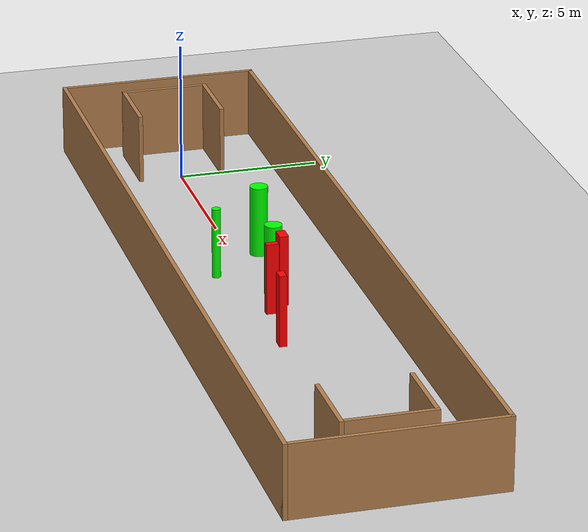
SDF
<sdf version="1.7">
 <world name="default">
  <light name="sun" type="directional">
   <pose>0 0 10 0 -0 0</pose>
   <diffuse>0.8 0.8 0.8 1</diffuse>
   <specular>0.2 0.2 0.2 1</specular>
   <attenuation>
    <range>1000</range>
    <constant>0.9</constant>
    <linear>0.01</linear>
    <quadratic>0.001</quadratic>
   </attenuation>
   <direction>-0.5 0.1 -0.9</direction>
   <spot><inner_angle>0</inner_angle><outer_angle>0</outer_angle><falloff>0</falloff></spot>
  </light>
  <model name="ground_plane">
   <static>1</static>
   <link name="link">
    <collision name="collision">
     <geometry><plane><normal>0 0 1</normal><size>100 100</size></plane></geometry>
     <surface>
      <contact><collide_bitmask>65535</collide_bitmask></contact>
      <friction><ode><mu>100</mu><mu2>50</mu2></ode></friction>
     </surface>
    </collision>
    <visual name="visual">
     <cast_shadows>0</cast_shadows>
     <geometry><plane><normal>0 0 1</normal><size>100 100</size></plane></geometry>
     <material>
      <script><uri>file://media/materials/scripts/gazebo.material</uri><name>Gazebo/Grey</name></script>
     </material>
    </visual>
   </link>
  </model>
  <gravity>0 0 -9.8</gravity>
  <magnetic_field>6e-06 2.3e-05 -4.2e-05</magnetic_field>
  <atmosphere type="adiabatic"/>
  <physics type="ode">
   <max_step_size>0.001</max_step_size>
   <real_time_factor>1</real_time_factor>
   <real_time_update_rate>1000</real_time_update_rate>
  </physics>
  <scene><ambient>0.4 0.4 0.4 1</ambient><background>0.7 0.7 0.7 1</background><shadows>1</shadows></scene>
  <spherical_coordinates>
   <surface_model>EARTH_WGS84</surface_model>
   <latitude_deg>0</latitude_deg>
   <longitude_deg>0</longitude_deg>
   <elevation>0</elevation>
   <heading_deg>0</heading_deg>
  </spherical_coordinates>
  <model name="my_base_walls">
   <link name="Wall_0">
    <collision name="Wall_0_Collision">
     <geometry><box><size>7.15 0.15 2.5</size></box></geometry>
     <pose>0 0 1.25 0 -0 0</pose>
    </collision>
    <visual name="Wall_0_Visual">
     <pose>0 0 1.25 0 -0 0</pose>
     <geometry><box><size>7.15 0.15 2.5</size></box></geometry>
     <material>
      <script><uri>file://media/materials/scripts/gazebo.material</uri><name>Gazebo/Wood</name></script>
      <ambient>1 1 1 1</ambient>
     </material>
     <meta><layer>0</layer></meta>
    </visual>
    <pose>-15 0 0 0 -0 1.5708</pose>
   </link>
   <link name="Wall_10">
    <collision name="Wall_10_Collision">
     <geometry><box><size>2.65 0.15 2.5</size></box></geometry>
     <pose>0 0 1.25 0 -0 0</pose>
    </collision>
    <visual name="Wall_10_Visual">
     <pose>0 0 1.25 0 -0 0</pose>
     <geometry><box><size>2.65 0.15 2.5</size></box></geometry>
     <material>
      <script><uri>file://media/materials/scripts/gazebo.material</uri><name>Gazebo/Wood</name></script>
      <ambient>1 1 1 1</ambient>
     </material>
     <meta><layer>0</layer></meta>
    </visual>
    <pose>-12.75 -1.5 0 0 -0 0</pose>
   </link>
   <link name="Wall_12">
    <collision name="Wall_12_Collision">
     <geometry><box><size>2.65 0.15 2.5</size></box></geometry>
     <pose>0 0 1.25 0 -0 0</pose>
    </collision>
    <visual name="Wall_12_Visual">
     <pose>0 0 1.25 0 -0 0</pose>
     <geometry><box><size>2.65 0.15 2.5</size></box></geometry>
     <material>
      <script><uri>file://media/materials/scripts/gazebo.material</uri><name>Gazebo/Wood</name></script>
      <ambient>1 1 1 1</ambient>
     </material>
     <meta><layer>0</layer></meta>
    </visual>
    <pose>-12.75 1.5 0 0 -0 0</pose>
   </link>
   <link name="Wall_14">
    <collision name="Wall_14_Collision">
     <geometry><box><size>3.15 0.15 2.5</size></box></geometry>
     <pose>0 0 1.25 0 -0 0</pose>
    </collision>
    <visual name="Wall_14_Visual">
     <pose>0 0 1.25 0 -0 0</pose>
     <geometry><box><size>3.15 0.15 2.5</size></box></geometry>
     <material>
      <script><uri>file://media/materials/scripts/gazebo.material</uri><name>Gazebo/Wood</name></script>
      <ambient>1 1 1 1</ambient>
     </material>
     <meta><layer>0</layer></meta>
    </visual>
    <pose>14 0 0 0 -0 -1.5708</pose>
   </link>
   <link name="Wall_15">
    <collision name="Wall_15_Collision">
     <geometry><box><size>2.65 0.15 2.5</size></box></geometry>
     <pose>0 0 1.25 0 -0 0</pose>
    </collision>
    <visual name="Wall_15_Visual">
     <pose>0 0 1.25 0 -0 0</pose>
     <geometry><box><size>2.65 0.15 2.5</size></box></geometry>
     <material>
      <script><uri>file://media/materials/scripts/gazebo.material</uri><name>Gazebo/Wood</name></script>
      <ambient>1 1 1 1</ambient>
     </material>
     <meta><layer>0</layer></meta>
    </visual>
    <pose>12.75 -1.5 0 0 -0 3.14159</pose>
   </link>
   <link name="Wall_17">
    <collision name="Wall_17_Collision">
     <geometry><box><size>2.65 0.15 2.5</size></box></geometry>
     <pose>0 0 1.25 0 -0 0</pose>
    </collision>
    <visual name="Wall_17_Visual">
     <pose>0 0 1.25 0 -0 0</pose>
     <geometry><box><size>2.65 0.15 2.5</size></box></geometry>
     <material>
      <script><uri>file://media/materials/scripts/gazebo.material</uri><name>Gazebo/Wood</name></script>
      <ambient>1 1 1 1</ambient>
     </material>
     <meta><layer>0</layer></meta>
    </visual>
    <pose>12.75 1.5 0 0 -0 3.14159</pose>
   </link>
   <link name="Wall_2">
    <collision name="Wall_2_Collision">
     <geometry><box><size>30.15 0.15 2.5</size></box></geometry>
     <pose>0 0 1.25 0 -0 0</pose>
    </collision>
    <visual name="Wall_2_Visual">
     <pose>0 0 1.25 0 -0 0</pose>
     <geometry><box><size>30.15 0.15 2.5</size></box></geometry>
     <material>
      <script><uri>file://media/materials/scripts/gazebo.material</uri><name>Gazebo/Wood</name></script>
      <ambient>1 1 1 1</ambient>
     </material>
     <meta><layer>0</layer></meta>
    </visual>
    <pose>-0 -3.5 0 0 -0 0</pose>
   </link>
   <link name="Wall_4">
    <collision name="Wall_4_Collision">
     <geometry><box><size>30.15 0.15 2.5</size></box></geometry>
     <pose>0 0 1.25 0 -0 0</pose>
    </collision>
    <visual name="Wall_4_Visual">
     <pose>0 0 1.25 0 -0 0</pose>
     <geometry><box><size>30.15 0.15 2.5</size></box></geometry>
     <material>
      <script><uri>file://media/materials/scripts/gazebo.material</uri><name>Gazebo/Wood</name></script>
      <ambient>1 1 1 1</ambient>
     </material>
     <meta><layer>0</layer></meta>
    </visual>
    <pose>-0 3.5 0 0 -0 0</pose>
   </link>
   <link name="Wall_6">
    <collision name="Wall_6_Collision">
     <geometry><box><size>7.15 0.15 2.5</size></box></geometry>
     <pose>0 0 1.25 0 -0 0</pose>
    </collision>
    <visual name="Wall_6_Visual">
     <pose>0 0 1.25 0 -0 0</pose>
     <geometry><box><size>7.15 0.15 2.5</size></box></geometry>
     <material>
      <script><uri>file://media/materials/scripts/gazebo.material</uri><name>Gazebo/Wood</name></script>
      <ambient>1 1 1 1</ambient>
     </material>
     <meta><layer>0</layer></meta>
    </visual>
    <pose>15 0 0 0 -0 -1.5708</pose>
   </link>
   <link name="Wall_9">
    <collision name="Wall_9_Collision">
     <geometry><box><size>3.15 0.15 2.5</size></box></geometry>
     <pose>0 0 1.25 0 -0 0</pose>
    </collision>
    <visual name="Wall_9_Visual">
     <pose>0 0 1.25 0 -0 0</pose>
     <geometry><box><size>3.15 0.15 2.5</size></box></geometry>
     <material>
      <script><uri>file://media/materials/scripts/gazebo.material</uri><name>Gazebo/Wood</name></script>
      <ambient>1 1 1 1</ambient>
     </material>
     <meta><layer>0</layer></meta>
    </visual>
    <pose>-14 0 0 0 -0 -1.5708</pose>
   </link>
   <static>1</static>
   <pose>11.5 0 0 0 -0 0</pose>
  </model>
  <model name="cylinder1">
   <static>1</static>
   <link name="link">
    <inertial>
     <mass>1</mass>
     <inertia><ixx>0.5</ixx><ixy>0</ixy><ixz>0</ixz><iyy>0.5</iyy><iyz>0</iyz><izz>1</izz></inertia>
    </inertial>
    <collision name="collision">
     <geometry><cylinder><radius>0.30260239494001323</radius><length>2.5</length></cylinder></geometry>
    </collision>
    <visual name="visual">
     <geometry><cylinder><radius>0.30260239494001323</radius><length>2.5</length></cylinder></geometry>
     <material>
      <ambient>0 1 0 1</ambient>
      <diffuse>0 1 0 1</diffuse>
      <specular>0.1 0.1 0.1 1</specular>
      <emissive>0 0 0 0</emissive>
     </material>
    </visual>
   </link>
   <pose>10.784753691218187 0.47789362959075365 1.25 0 0 0</pose>
  </model>
  <model name="cylinder2">
   <static>1</static>
   <link name="link">
    <inertial>
     <mass>1</mass>
     <inertia><ixx>0.5</ixx><ixy>0</ixy><ixz>0</ixz><iyy>0.5</iyy><iyz>0</iyz><izz>1</izz></inertia>
    </inertial>
    <collision name="collision">
     <geometry><cylinder><radius>0.1504163388322021</radius><length>2.5</length></cylinder></geometry>
    </collision>
    <visual name="visual">
     <geometry><cylinder><radius>0.1504163388322021</radius><length>2.5</length></cylinder></geometry>
     <material>
      <ambient>0 1 0 1</ambient>
      <diffuse>0 1 0 1</diffuse>
      <specular>0.1 0.1 0.1 1</specular>
      <emissive>0 0 0 0</emissive>
     </material>
    </visual>
   </link>
   <pose>8.956445110581129 -1.0134579630724088 1.25 0 0 0</pose>
  </model>
  <model name="cylinder3">
   <static>1</static>
   <link name="link">
    <inertial>
     <mass>1</mass>
     <inertia><ixx>0.5</ixx><ixy>0</ixy><ixz>0</ixz><iyy>0.5</iyy><iyz>0</iyz><izz>1</izz></inertia>
    </inertial>
    <collision name="collision">
     <geometry><cylinder><radius>0.3120120585288194</radius><length>2.5</length></cylinder></geometry>
    </collision>
    <visual name="visual">
     <geometry><cylinder><radius>0.3120120585288194</radius><length>2.5</length></cylinder></geometry>
     <material>
      <ambient>0 1 0 1</ambient>
      <diffuse>0 1 0 1</diffuse>
      <specular>0.1 0.1 0.1 1</specular>
      <emissive>0 0 0 0</emissive>
     </material>
    </visual>
   </link>
   <pose>7.431115024676874 0.8874413167943578 1.25 0 0 0</pose>
  </model>
  <model name="box1">
   <static>1</static>
   <link name="link">
    <inertial>
     <mass>1</mass>
     <inertia><ixx>0.083</ixx><ixy>0</ixy><ixz>0</ixz><iyy>0.083</iyy><iyz>0</iyz><izz>0.083</izz></inertia>
    </inertial>
    <collision name="collision">
     <geometry><box><size>0.5290254512537725 0.31328878489572604 2.5</size></box></geometry>
    </collision>
    <visual name="visual">
     <geometry><box><size>0.5290254512537725 0.31328878489572604 2.5</size></box></geometry>
     <material>
      <ambient>1 0 0 1</ambient>
      <diffuse>1 0 0 1</diffuse>
      <specular>0.1 0.1 0.1 1</specular>
      <emissive>0 0 0 0</emissive>
     </material>
    </visual>
    <sensor name="my_contact" type="contact">
     <contact><collision>box_collision</collision><topic>__default_topic__</topic></contact>
    </sensor>
   </link>
   <pose>11.605492461692588 0.5582899499323348 1.25 0 0 0</pose>
  </model>
  <model name="box2">
   <static>1</static>
   <link name="link">
    <inertial>
     <mass>1</mass>
     <inertia><ixx>0.083</ixx><ixy>0</ixy><ixz>0</ixz><iyy>0.083</iyy><iyz>0</iyz><izz>0.083</izz></inertia>
    </inertial>
    <collision name="collision">
     <geometry><box><size>0.22676745666401488 0.4199865979826924 2.5</size></box></geometry>
    </collision>
    <visual name="visual">
     <geometry><box><size>0.22676745666401488 0.4199865979826924 2.5</size></box></geometry>
     <material>
      <ambient>1 0 0 1</ambient>
      <diffuse>1 0 0 1</diffuse>
      <specular>0.1 0.1 0.1 1</specular>
      <emissive>0 0 0 0</emissive>
     </material>
    </visual>
    <sensor name="my_contact" type="contact">
     <contact><collision>box_collision</collision><topic>__default_topic__</topic></contact>
    </sensor>
   </link>
   <pose>12.293221663700368 0.01651590330190933 1.25 0 0 0</pose>
  </model>
  <model name="box3">
   <static>1</static>
   <link name="link">
    <inertial>
     <mass>1</mass>
     <inertia><ixx>0.083</ixx><ixy>0</ixy><ixz>0</ixz><iyy>0.083</iyy><iyz>0</iyz><izz>0.083</izz></inertia>
    </inertial>
    <collision name="collision">
     <geometry><box><size>0.4420295138321986 0.24636355462428594 2.5</size></box></geometry>
    </collision>
    <visual name="visual">
     <geometry><box><size>0.4420295138321986 0.24636355462428594 2.5</size></box></geometry>
     <material>
      <ambient>1 0 0 1</ambient>
      <diffuse>1 0 0 1</diffuse>
      <specular>0.1 0.1 0.1 1</specular>
      <emissive>0 0 0 0</emissive>
     </material>
    </visual>
    <sensor name="my_contact" type="contact">
     <contact><collision>box_collision</collision><topic>__default_topic__</topic></contact>
    </sensor>
   </link>
   <pose>14.755888939776685 -0.3352783099736496 1.25 0 0 0</pose>
  </model>
 </world>
</sdf>
